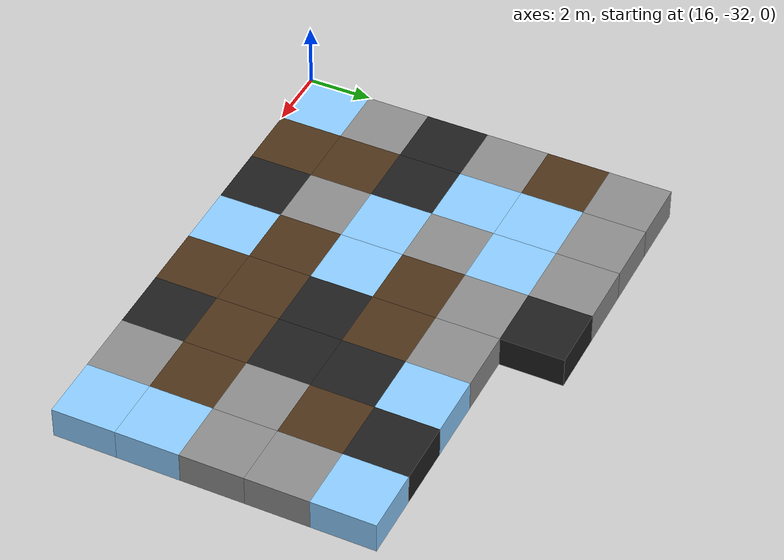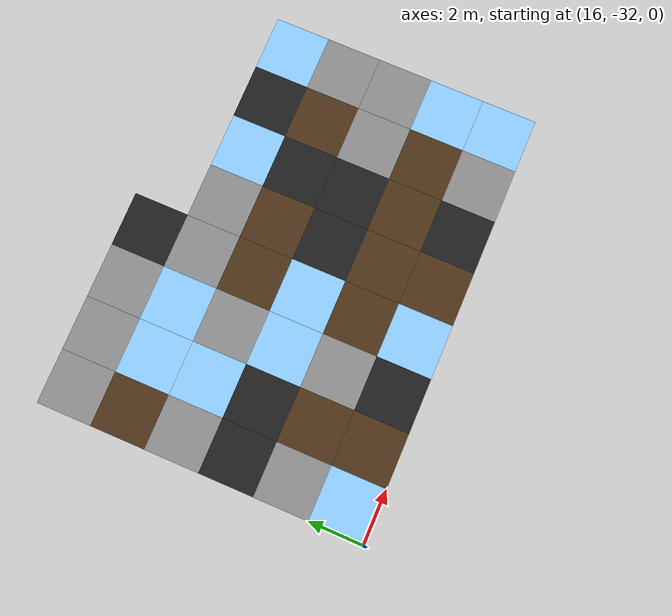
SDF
<sdf version="1.5">
 <world name="squares_example">
  <model name="tile_24_0">
   <static>true</static>
   <pose>17.000 -31.000 -0.500 0 0 0</pose>
   <link name="link">
    <collision name="col">
     <geometry><box><size>2.0 2.0 1.0</size></box></geometry>
     <surface>
      <friction>
       <ode><mu>0.03</mu><mu2>0.02</mu2><fdir1>1 0 0</fdir1><slip1>0.03</slip1><slip2>0.03</slip2></ode>
       <torsional>
        <coefficient>0.005</coefficient>
        <use_patch_radius>false</use_patch_radius>
        <surface_radius>0.12</surface_radius>
        <ode><slip>0.01</slip></ode>
       </torsional>
      </friction>
      <bounce><restitution_coefficient>0.0</restitution_coefficient><threshold>0.1</threshold></bounce>
      <contact>
       <ode><kp>10000000.0</kp><kd>1000.0</kd><max_vel>0.01</max_vel><min_depth>0.0</min_depth></ode>
      </contact>
     </surface>
    </collision>
    <visual name="visual">
     <geometry><box><size>2.0 2.0 1.0</size></box></geometry>
     <material>
      <diffuse>0.55 0.80 1.00 1</diffuse>
      <ambient>0 0 0 0</ambient>
      <specular>0 0 0 1</specular>
      <emissive>0 0 0 1</emissive>
     </material>
    </visual>
   </link>
  </model>
  <model name="tile_25_0">
   <static>true</static>
   <pose>19.000 -31.000 -0.500 0 0 0</pose>
   <link name="link">
    <collision name="col">
     <geometry><box><size>2.0 2.0 1.0</size></box></geometry>
     <surface>
      <friction>
       <ode><mu>0.6</mu><mu2>0.4</mu2><fdir1>1 0 0</fdir1><slip1>0.08</slip1><slip2>0.08</slip2></ode>
       <torsional>
        <coefficient>0.03</coefficient>
        <use_patch_radius>false</use_patch_radius>
        <surface_radius>0.12</surface_radius>
        <ode><slip>0.0</slip></ode>
       </torsional>
      </friction>
      <bounce><restitution_coefficient>0.0</restitution_coefficient><threshold>0.1</threshold></bounce>
      <contact>
       <ode><kp>1000000.0</kp><kd>10000.0</kd><max_vel>0.01</max_vel><min_depth>0.0</min_depth></ode>
      </contact>
     </surface>
    </collision>
    <visual name="visual">
     <geometry><box><size>2.0 2.0 1.0</size></box></geometry>
     <material>
      <diffuse>0.30 0.20 0.10 1</diffuse>
      <ambient>0 0 0 0</ambient>
      <specular>0 0 0 1</specular>
      <emissive>0 0 0 1</emissive>
     </material>
    </visual>
   </link>
  </model>
  <model name="tile_26_0">
   <static>true</static>
   <pose>21.000 -31.000 -0.500 0 0 0</pose>
   <link name="link">
    <collision name="col">
     <geometry><box><size>2.0 2.0 1.0</size></box></geometry>
     <surface>
      <friction>
       <ode><mu>0.4</mu><mu2>0.15</mu2><fdir1>1 0 0</fdir1><slip1>0.0</slip1><slip2>0.0</slip2></ode>
       <torsional>
        <coefficient>0.03</coefficient>
        <use_patch_radius>false</use_patch_radius>
        <surface_radius>0.12</surface_radius>
        <ode><slip>0.0</slip></ode>
       </torsional>
      </friction>
      <bounce><restitution_coefficient>0.0</restitution_coefficient><threshold>0.1</threshold></bounce>
      <contact>
       <ode><kp>1000000000.0</kp><kd>1000000.0</kd><max_vel>0.01</max_vel><min_depth>0.0</min_depth></ode>
      </contact>
     </surface>
    </collision>
    <visual name="visual">
     <geometry><box><size>2.0 2.0 1.0</size></box></geometry>
     <material>
      <diffuse>0.12 0.12 0.12 1</diffuse>
      <ambient>0 0 0 0</ambient>
      <specular>0 0 0 1</specular>
      <emissive>0 0 0 1</emissive>
     </material>
    </visual>
   </link>
  </model>
  <model name="tile_27_0">
   <static>true</static>
   <pose>23.000 -31.000 -0.500 0 0 0</pose>
   <link name="link">
    <collision name="col">
     <geometry><box><size>2.0 2.0 1.0</size></box></geometry>
     <surface>
      <friction>
       <ode><mu>0.03</mu><mu2>0.02</mu2><fdir1>1 0 0</fdir1><slip1>0.03</slip1><slip2>0.03</slip2></ode>
       <torsional>
        <coefficient>0.005</coefficient>
        <use_patch_radius>false</use_patch_radius>
        <surface_radius>0.12</surface_radius>
        <ode><slip>0.01</slip></ode>
       </torsional>
      </friction>
      <bounce><restitution_coefficient>0.0</restitution_coefficient><threshold>0.1</threshold></bounce>
      <contact>
       <ode><kp>10000000.0</kp><kd>1000.0</kd><max_vel>0.01</max_vel><min_depth>0.0</min_depth></ode>
      </contact>
     </surface>
    </collision>
    <visual name="visual">
     <geometry><box><size>2.0 2.0 1.0</size></box></geometry>
     <material>
      <diffuse>0.55 0.80 1.00 1</diffuse>
      <ambient>0 0 0 0</ambient>
      <specular>0 0 0 1</specular>
      <emissive>0 0 0 1</emissive>
     </material>
    </visual>
   </link>
  </model>
  <model name="tile_28_0">
   <static>true</static>
   <pose>25.000 -31.000 -0.500 0 0 0</pose>
   <link name="link">
    <collision name="col">
     <geometry><box><size>2.0 2.0 1.0</size></box></geometry>
     <surface>
      <friction>
       <ode><mu>0.6</mu><mu2>0.4</mu2><fdir1>1 0 0</fdir1><slip1>0.08</slip1><slip2>0.08</slip2></ode>
       <torsional>
        <coefficient>0.03</coefficient>
        <use_patch_radius>false</use_patch_radius>
        <surface_radius>0.12</surface_radius>
        <ode><slip>0.0</slip></ode>
       </torsional>
      </friction>
      <bounce><restitution_coefficient>0.0</restitution_coefficient><threshold>0.1</threshold></bounce>
      <contact>
       <ode><kp>1000000.0</kp><kd>10000.0</kd><max_vel>0.01</max_vel><min_depth>0.0</min_depth></ode>
      </contact>
     </surface>
    </collision>
    <visual name="visual">
     <geometry><box><size>2.0 2.0 1.0</size></box></geometry>
     <material>
      <diffuse>0.30 0.20 0.10 1</diffuse>
      <ambient>0 0 0 0</ambient>
      <specular>0 0 0 1</specular>
      <emissive>0 0 0 1</emissive>
     </material>
    </visual>
   </link>
  </model>
  <model name="tile_29_0">
   <static>true</static>
   <pose>27.000 -31.000 -0.500 0 0 0</pose>
   <link name="link">
    <collision name="col">
     <geometry><box><size>2.0 2.0 1.0</size></box></geometry>
     <surface>
      <friction>
       <ode><mu>0.4</mu><mu2>0.15</mu2><fdir1>1 0 0</fdir1><slip1>0.0</slip1><slip2>0.0</slip2></ode>
       <torsional>
        <coefficient>0.03</coefficient>
        <use_patch_radius>false</use_patch_radius>
        <surface_radius>0.12</surface_radius>
        <ode><slip>0.0</slip></ode>
       </torsional>
      </friction>
      <bounce><restitution_coefficient>0.0</restitution_coefficient><threshold>0.1</threshold></bounce>
      <contact>
       <ode><kp>1000000000.0</kp><kd>1000000.0</kd><max_vel>0.01</max_vel><min_depth>0.0</min_depth></ode>
      </contact>
     </surface>
    </collision>
    <visual name="visual">
     <geometry><box><size>2.0 2.0 1.0</size></box></geometry>
     <material>
      <diffuse>0.12 0.12 0.12 1</diffuse>
      <ambient>0 0 0 0</ambient>
      <specular>0 0 0 1</specular>
      <emissive>0 0 0 1</emissive>
     </material>
    </visual>
   </link>
  </model>
  <model name="tile_30_0">
   <static>true</static>
   <pose>29.000 -31.000 -0.500 0 0 0</pose>
   <link name="link">
    <collision name="col">
     <geometry><box><size>2.0 2.0 1.0</size></box></geometry>
     <surface>
      <friction>
       <ode><mu>0.8</mu><mu2>0.3</mu2><fdir1>1 0 0</fdir1><slip1>0.0</slip1><slip2>0.0</slip2></ode>
       <torsional>
        <coefficient>0.03</coefficient>
        <use_patch_radius>false</use_patch_radius>
        <surface_radius>0.12</surface_radius>
        <ode><slip>0.0</slip></ode>
       </torsional>
      </friction>
      <bounce><restitution_coefficient>0.0</restitution_coefficient><threshold>0.1</threshold></bounce>
      <contact>
       <ode><kp>10000000000.0</kp><kd>10000000.0</kd><max_vel>0.01</max_vel><min_depth>0.0</min_depth></ode>
      </contact>
     </surface>
    </collision>
    <visual name="visual">
     <geometry><box><size>2.0 2.0 1.0</size></box></geometry>
     <material>
      <diffuse>0.55 0.55 0.55 1</diffuse>
      <ambient>0 0 0 0</ambient>
      <specular>0 0 0 1</specular>
      <emissive>0 0 0 1</emissive>
     </material>
    </visual>
   </link>
  </model>
  <model name="tile_31_0">
   <static>true</static>
   <pose>31.000 -31.000 -0.500 0 0 0</pose>
   <link name="link">
    <collision name="col">
     <geometry><box><size>2.0 2.0 1.0</size></box></geometry>
     <surface>
      <friction>
       <ode><mu>0.03</mu><mu2>0.02</mu2><fdir1>1 0 0</fdir1><slip1>0.03</slip1><slip2>0.03</slip2></ode>
       <torsional>
        <coefficient>0.005</coefficient>
        <use_patch_radius>false</use_patch_radius>
        <surface_radius>0.12</surface_radius>
        <ode><slip>0.01</slip></ode>
       </torsional>
      </friction>
      <bounce><restitution_coefficient>0.0</restitution_coefficient><threshold>0.1</threshold></bounce>
      <contact>
       <ode><kp>10000000.0</kp><kd>1000.0</kd><max_vel>0.01</max_vel><min_depth>0.0</min_depth></ode>
      </contact>
     </surface>
    </collision>
    <visual name="visual">
     <geometry><box><size>2.0 2.0 1.0</size></box></geometry>
     <material>
      <diffuse>0.55 0.80 1.00 1</diffuse>
      <ambient>0 0 0 0</ambient>
      <specular>0 0 0 1</specular>
      <emissive>0 0 0 1</emissive>
     </material>
    </visual>
   </link>
  </model>
  <model name="tile_24_1">
   <static>true</static>
   <pose>17.000 -29.000 -0.500 0 0 0</pose>
   <link name="link">
    <collision name="col">
     <geometry><box><size>2.0 2.0 1.0</size></box></geometry>
     <surface>
      <friction>
       <ode><mu>0.8</mu><mu2>0.3</mu2><fdir1>1 0 0</fdir1><slip1>0.0</slip1><slip2>0.0</slip2></ode>
       <torsional>
        <coefficient>0.03</coefficient>
        <use_patch_radius>false</use_patch_radius>
        <surface_radius>0.12</surface_radius>
        <ode><slip>0.0</slip></ode>
       </torsional>
      </friction>
      <bounce><restitution_coefficient>0.0</restitution_coefficient><threshold>0.1</threshold></bounce>
      <contact>
       <ode><kp>10000000000.0</kp><kd>10000000.0</kd><max_vel>0.01</max_vel><min_depth>0.0</min_depth></ode>
      </contact>
     </surface>
    </collision>
    <visual name="visual">
     <geometry><box><size>2.0 2.0 1.0</size></box></geometry>
     <material>
      <diffuse>0.55 0.55 0.55 1</diffuse>
      <ambient>0 0 0 0</ambient>
      <specular>0 0 0 1</specular>
      <emissive>0 0 0 1</emissive>
     </material>
    </visual>
   </link>
  </model>
  <model name="tile_25_1">
   <static>true</static>
   <pose>19.000 -29.000 -0.500 0 0 0</pose>
   <link name="link">
    <collision name="col">
     <geometry><box><size>2.0 2.0 1.0</size></box></geometry>
     <surface>
      <friction>
       <ode><mu>0.6</mu><mu2>0.4</mu2><fdir1>1 0 0</fdir1><slip1>0.08</slip1><slip2>0.08</slip2></ode>
       <torsional>
        <coefficient>0.03</coefficient>
        <use_patch_radius>false</use_patch_radius>
        <surface_radius>0.12</surface_radius>
        <ode><slip>0.0</slip></ode>
       </torsional>
      </friction>
      <bounce><restitution_coefficient>0.0</restitution_coefficient><threshold>0.1</threshold></bounce>
      <contact>
       <ode><kp>1000000.0</kp><kd>10000.0</kd><max_vel>0.01</max_vel><min_depth>0.0</min_depth></ode>
      </contact>
     </surface>
    </collision>
    <visual name="visual">
     <geometry><box><size>2.0 2.0 1.0</size></box></geometry>
     <material>
      <diffuse>0.30 0.20 0.10 1</diffuse>
      <ambient>0 0 0 0</ambient>
      <specular>0 0 0 1</specular>
      <emissive>0 0 0 1</emissive>
     </material>
    </visual>
   </link>
  </model>
  <model name="tile_26_1">
   <static>true</static>
   <pose>21.000 -29.000 -0.500 0 0 0</pose>
   <link name="link">
    <collision name="col">
     <geometry><box><size>2.0 2.0 1.0</size></box></geometry>
     <surface>
      <friction>
       <ode><mu>0.8</mu><mu2>0.3</mu2><fdir1>1 0 0</fdir1><slip1>0.0</slip1><slip2>0.0</slip2></ode>
       <torsional>
        <coefficient>0.03</coefficient>
        <use_patch_radius>false</use_patch_radius>
        <surface_radius>0.12</surface_radius>
        <ode><slip>0.0</slip></ode>
       </torsional>
      </friction>
      <bounce><restitution_coefficient>0.0</restitution_coefficient><threshold>0.1</threshold></bounce>
      <contact>
       <ode><kp>10000000000.0</kp><kd>10000000.0</kd><max_vel>0.01</max_vel><min_depth>0.0</min_depth></ode>
      </contact>
     </surface>
    </collision>
    <visual name="visual">
     <geometry><box><size>2.0 2.0 1.0</size></box></geometry>
     <material>
      <diffuse>0.55 0.55 0.55 1</diffuse>
      <ambient>0 0 0 0</ambient>
      <specular>0 0 0 1</specular>
      <emissive>0 0 0 1</emissive>
     </material>
    </visual>
   </link>
  </model>
  <model name="tile_27_1">
   <static>true</static>
   <pose>23.000 -29.000 -0.500 0 0 0</pose>
   <link name="link">
    <collision name="col">
     <geometry><box><size>2.0 2.0 1.0</size></box></geometry>
     <surface>
      <friction>
       <ode><mu>0.6</mu><mu2>0.4</mu2><fdir1>1 0 0</fdir1><slip1>0.08</slip1><slip2>0.08</slip2></ode>
       <torsional>
        <coefficient>0.03</coefficient>
        <use_patch_radius>false</use_patch_radius>
        <surface_radius>0.12</surface_radius>
        <ode><slip>0.0</slip></ode>
       </torsional>
      </friction>
      <bounce><restitution_coefficient>0.0</restitution_coefficient><threshold>0.1</threshold></bounce>
      <contact>
       <ode><kp>1000000.0</kp><kd>10000.0</kd><max_vel>0.01</max_vel><min_depth>0.0</min_depth></ode>
      </contact>
     </surface>
    </collision>
    <visual name="visual">
     <geometry><box><size>2.0 2.0 1.0</size></box></geometry>
     <material>
      <diffuse>0.30 0.20 0.10 1</diffuse>
      <ambient>0 0 0 0</ambient>
      <specular>0 0 0 1</specular>
      <emissive>0 0 0 1</emissive>
     </material>
    </visual>
   </link>
  </model>
  <model name="tile_28_1">
   <static>true</static>
   <pose>25.000 -29.000 -0.500 0 0 0</pose>
   <link name="link">
    <collision name="col">
     <geometry><box><size>2.0 2.0 1.0</size></box></geometry>
     <surface>
      <friction>
       <ode><mu>0.6</mu><mu2>0.4</mu2><fdir1>1 0 0</fdir1><slip1>0.08</slip1><slip2>0.08</slip2></ode>
       <torsional>
        <coefficient>0.03</coefficient>
        <use_patch_radius>false</use_patch_radius>
        <surface_radius>0.12</surface_radius>
        <ode><slip>0.0</slip></ode>
       </torsional>
      </friction>
      <bounce><restitution_coefficient>0.0</restitution_coefficient><threshold>0.1</threshold></bounce>
      <contact>
       <ode><kp>1000000.0</kp><kd>10000.0</kd><max_vel>0.01</max_vel><min_depth>0.0</min_depth></ode>
      </contact>
     </surface>
    </collision>
    <visual name="visual">
     <geometry><box><size>2.0 2.0 1.0</size></box></geometry>
     <material>
      <diffuse>0.30 0.20 0.10 1</diffuse>
      <ambient>0 0 0 0</ambient>
      <specular>0 0 0 1</specular>
      <emissive>0 0 0 1</emissive>
     </material>
    </visual>
   </link>
  </model>
  <model name="tile_29_1">
   <static>true</static>
   <pose>27.000 -29.000 -0.500 0 0 0</pose>
   <link name="link">
    <collision name="col">
     <geometry><box><size>2.0 2.0 1.0</size></box></geometry>
     <surface>
      <friction>
       <ode><mu>0.6</mu><mu2>0.4</mu2><fdir1>1 0 0</fdir1><slip1>0.08</slip1><slip2>0.08</slip2></ode>
       <torsional>
        <coefficient>0.03</coefficient>
        <use_patch_radius>false</use_patch_radius>
        <surface_radius>0.12</surface_radius>
        <ode><slip>0.0</slip></ode>
       </torsional>
      </friction>
      <bounce><restitution_coefficient>0.0</restitution_coefficient><threshold>0.1</threshold></bounce>
      <contact>
       <ode><kp>1000000.0</kp><kd>10000.0</kd><max_vel>0.01</max_vel><min_depth>0.0</min_depth></ode>
      </contact>
     </surface>
    </collision>
    <visual name="visual">
     <geometry><box><size>2.0 2.0 1.0</size></box></geometry>
     <material>
      <diffuse>0.30 0.20 0.10 1</diffuse>
      <ambient>0 0 0 0</ambient>
      <specular>0 0 0 1</specular>
      <emissive>0 0 0 1</emissive>
     </material>
    </visual>
   </link>
  </model>
  <model name="tile_30_1">
   <static>true</static>
   <pose>29.000 -29.000 -0.500 0 0 0</pose>
   <link name="link">
    <collision name="col">
     <geometry><box><size>2.0 2.0 1.0</size></box></geometry>
     <surface>
      <friction>
       <ode><mu>0.6</mu><mu2>0.4</mu2><fdir1>1 0 0</fdir1><slip1>0.08</slip1><slip2>0.08</slip2></ode>
       <torsional>
        <coefficient>0.03</coefficient>
        <use_patch_radius>false</use_patch_radius>
        <surface_radius>0.12</surface_radius>
        <ode><slip>0.0</slip></ode>
       </torsional>
      </friction>
      <bounce><restitution_coefficient>0.0</restitution_coefficient><threshold>0.1</threshold></bounce>
      <contact>
       <ode><kp>1000000.0</kp><kd>10000.0</kd><max_vel>0.01</max_vel><min_depth>0.0</min_depth></ode>
      </contact>
     </surface>
    </collision>
    <visual name="visual">
     <geometry><box><size>2.0 2.0 1.0</size></box></geometry>
     <material>
      <diffuse>0.30 0.20 0.10 1</diffuse>
      <ambient>0 0 0 0</ambient>
      <specular>0 0 0 1</specular>
      <emissive>0 0 0 1</emissive>
     </material>
    </visual>
   </link>
  </model>
  <model name="tile_31_1">
   <static>true</static>
   <pose>31.000 -29.000 -0.500 0 0 0</pose>
   <link name="link">
    <collision name="col">
     <geometry><box><size>2.0 2.0 1.0</size></box></geometry>
     <surface>
      <friction>
       <ode><mu>0.03</mu><mu2>0.02</mu2><fdir1>1 0 0</fdir1><slip1>0.03</slip1><slip2>0.03</slip2></ode>
       <torsional>
        <coefficient>0.005</coefficient>
        <use_patch_radius>false</use_patch_radius>
        <surface_radius>0.12</surface_radius>
        <ode><slip>0.01</slip></ode>
       </torsional>
      </friction>
      <bounce><restitution_coefficient>0.0</restitution_coefficient><threshold>0.1</threshold></bounce>
      <contact>
       <ode><kp>10000000.0</kp><kd>1000.0</kd><max_vel>0.01</max_vel><min_depth>0.0</min_depth></ode>
      </contact>
     </surface>
    </collision>
    <visual name="visual">
     <geometry><box><size>2.0 2.0 1.0</size></box></geometry>
     <material>
      <diffuse>0.55 0.80 1.00 1</diffuse>
      <ambient>0 0 0 0</ambient>
      <specular>0 0 0 1</specular>
      <emissive>0 0 0 1</emissive>
     </material>
    </visual>
   </link>
  </model>
  <model name="tile_24_2">
   <static>true</static>
   <pose>17.000 -27.000 -0.500 0 0 0</pose>
   <link name="link">
    <collision name="col">
     <geometry><box><size>2.0 2.0 1.0</size></box></geometry>
     <surface>
      <friction>
       <ode><mu>0.4</mu><mu2>0.15</mu2><fdir1>1 0 0</fdir1><slip1>0.0</slip1><slip2>0.0</slip2></ode>
       <torsional>
        <coefficient>0.03</coefficient>
        <use_patch_radius>false</use_patch_radius>
        <surface_radius>0.12</surface_radius>
        <ode><slip>0.0</slip></ode>
       </torsional>
      </friction>
      <bounce><restitution_coefficient>0.0</restitution_coefficient><threshold>0.1</threshold></bounce>
      <contact>
       <ode><kp>1000000000.0</kp><kd>1000000.0</kd><max_vel>0.01</max_vel><min_depth>0.0</min_depth></ode>
      </contact>
     </surface>
    </collision>
    <visual name="visual">
     <geometry><box><size>2.0 2.0 1.0</size></box></geometry>
     <material>
      <diffuse>0.12 0.12 0.12 1</diffuse>
      <ambient>0 0 0 0</ambient>
      <specular>0 0 0 1</specular>
      <emissive>0 0 0 1</emissive>
     </material>
    </visual>
   </link>
  </model>
  <model name="tile_25_2">
   <static>true</static>
   <pose>19.000 -27.000 -0.500 0 0 0</pose>
   <link name="link">
    <collision name="col">
     <geometry><box><size>2.0 2.0 1.0</size></box></geometry>
     <surface>
      <friction>
       <ode><mu>0.4</mu><mu2>0.15</mu2><fdir1>1 0 0</fdir1><slip1>0.0</slip1><slip2>0.0</slip2></ode>
       <torsional>
        <coefficient>0.03</coefficient>
        <use_patch_radius>false</use_patch_radius>
        <surface_radius>0.12</surface_radius>
        <ode><slip>0.0</slip></ode>
       </torsional>
      </friction>
      <bounce><restitution_coefficient>0.0</restitution_coefficient><threshold>0.1</threshold></bounce>
      <contact>
       <ode><kp>1000000000.0</kp><kd>1000000.0</kd><max_vel>0.01</max_vel><min_depth>0.0</min_depth></ode>
      </contact>
     </surface>
    </collision>
    <visual name="visual">
     <geometry><box><size>2.0 2.0 1.0</size></box></geometry>
     <material>
      <diffuse>0.12 0.12 0.12 1</diffuse>
      <ambient>0 0 0 0</ambient>
      <specular>0 0 0 1</specular>
      <emissive>0 0 0 1</emissive>
     </material>
    </visual>
   </link>
  </model>
  <model name="tile_26_2">
   <static>true</static>
   <pose>21.000 -27.000 -0.500 0 0 0</pose>
   <link name="link">
    <collision name="col">
     <geometry><box><size>2.0 2.0 1.0</size></box></geometry>
     <surface>
      <friction>
       <ode><mu>0.03</mu><mu2>0.02</mu2><fdir1>1 0 0</fdir1><slip1>0.03</slip1><slip2>0.03</slip2></ode>
       <torsional>
        <coefficient>0.005</coefficient>
        <use_patch_radius>false</use_patch_radius>
        <surface_radius>0.12</surface_radius>
        <ode><slip>0.01</slip></ode>
       </torsional>
      </friction>
      <bounce><restitution_coefficient>0.0</restitution_coefficient><threshold>0.1</threshold></bounce>
      <contact>
       <ode><kp>10000000.0</kp><kd>1000.0</kd><max_vel>0.01</max_vel><min_depth>0.0</min_depth></ode>
      </contact>
     </surface>
    </collision>
    <visual name="visual">
     <geometry><box><size>2.0 2.0 1.0</size></box></geometry>
     <material>
      <diffuse>0.55 0.80 1.00 1</diffuse>
      <ambient>0 0 0 0</ambient>
      <specular>0 0 0 1</specular>
      <emissive>0 0 0 1</emissive>
     </material>
    </visual>
   </link>
  </model>
  <model name="tile_27_2">
   <static>true</static>
   <pose>23.000 -27.000 -0.500 0 0 0</pose>
   <link name="link">
    <collision name="col">
     <geometry><box><size>2.0 2.0 1.0</size></box></geometry>
     <surface>
      <friction>
       <ode><mu>0.03</mu><mu2>0.02</mu2><fdir1>1 0 0</fdir1><slip1>0.03</slip1><slip2>0.03</slip2></ode>
       <torsional>
        <coefficient>0.005</coefficient>
        <use_patch_radius>false</use_patch_radius>
        <surface_radius>0.12</surface_radius>
        <ode><slip>0.01</slip></ode>
       </torsional>
      </friction>
      <bounce><restitution_coefficient>0.0</restitution_coefficient><threshold>0.1</threshold></bounce>
      <contact>
       <ode><kp>10000000.0</kp><kd>1000.0</kd><max_vel>0.01</max_vel><min_depth>0.0</min_depth></ode>
      </contact>
     </surface>
    </collision>
    <visual name="visual">
     <geometry><box><size>2.0 2.0 1.0</size></box></geometry>
     <material>
      <diffuse>0.55 0.80 1.00 1</diffuse>
      <ambient>0 0 0 0</ambient>
      <specular>0 0 0 1</specular>
      <emissive>0 0 0 1</emissive>
     </material>
    </visual>
   </link>
  </model>
  <model name="tile_28_2">
   <static>true</static>
   <pose>25.000 -27.000 -0.500 0 0 0</pose>
   <link name="link">
    <collision name="col">
     <geometry><box><size>2.0 2.0 1.0</size></box></geometry>
     <surface>
      <friction>
       <ode><mu>0.4</mu><mu2>0.15</mu2><fdir1>1 0 0</fdir1><slip1>0.0</slip1><slip2>0.0</slip2></ode>
       <torsional>
        <coefficient>0.03</coefficient>
        <use_patch_radius>false</use_patch_radius>
        <surface_radius>0.12</surface_radius>
        <ode><slip>0.0</slip></ode>
       </torsional>
      </friction>
      <bounce><restitution_coefficient>0.0</restitution_coefficient><threshold>0.1</threshold></bounce>
      <contact>
       <ode><kp>1000000000.0</kp><kd>1000000.0</kd><max_vel>0.01</max_vel><min_depth>0.0</min_depth></ode>
      </contact>
     </surface>
    </collision>
    <visual name="visual">
     <geometry><box><size>2.0 2.0 1.0</size></box></geometry>
     <material>
      <diffuse>0.12 0.12 0.12 1</diffuse>
      <ambient>0 0 0 0</ambient>
      <specular>0 0 0 1</specular>
      <emissive>0 0 0 1</emissive>
     </material>
    </visual>
   </link>
  </model>
  <model name="tile_29_2">
   <static>true</static>
   <pose>27.000 -27.000 -0.500 0 0 0</pose>
   <link name="link">
    <collision name="col">
     <geometry><box><size>2.0 2.0 1.0</size></box></geometry>
     <surface>
      <friction>
       <ode><mu>0.4</mu><mu2>0.15</mu2><fdir1>1 0 0</fdir1><slip1>0.0</slip1><slip2>0.0</slip2></ode>
       <torsional>
        <coefficient>0.03</coefficient>
        <use_patch_radius>false</use_patch_radius>
        <surface_radius>0.12</surface_radius>
        <ode><slip>0.0</slip></ode>
       </torsional>
      </friction>
      <bounce><restitution_coefficient>0.0</restitution_coefficient><threshold>0.1</threshold></bounce>
      <contact>
       <ode><kp>1000000000.0</kp><kd>1000000.0</kd><max_vel>0.01</max_vel><min_depth>0.0</min_depth></ode>
      </contact>
     </surface>
    </collision>
    <visual name="visual">
     <geometry><box><size>2.0 2.0 1.0</size></box></geometry>
     <material>
      <diffuse>0.12 0.12 0.12 1</diffuse>
      <ambient>0 0 0 0</ambient>
      <specular>0 0 0 1</specular>
      <emissive>0 0 0 1</emissive>
     </material>
    </visual>
   </link>
  </model>
  <model name="tile_30_2">
   <static>true</static>
   <pose>29.000 -27.000 -0.500 0 0 0</pose>
   <link name="link">
    <collision name="col">
     <geometry><box><size>2.0 2.0 1.0</size></box></geometry>
     <surface>
      <friction>
       <ode><mu>0.8</mu><mu2>0.3</mu2><fdir1>1 0 0</fdir1><slip1>0.0</slip1><slip2>0.0</slip2></ode>
       <torsional>
        <coefficient>0.03</coefficient>
        <use_patch_radius>false</use_patch_radius>
        <surface_radius>0.12</surface_radius>
        <ode><slip>0.0</slip></ode>
       </torsional>
      </friction>
      <bounce><restitution_coefficient>0.0</restitution_coefficient><threshold>0.1</threshold></bounce>
      <contact>
       <ode><kp>10000000000.0</kp><kd>10000000.0</kd><max_vel>0.01</max_vel><min_depth>0.0</min_depth></ode>
      </contact>
     </surface>
    </collision>
    <visual name="visual">
     <geometry><box><size>2.0 2.0 1.0</size></box></geometry>
     <material>
      <diffuse>0.55 0.55 0.55 1</diffuse>
      <ambient>0 0 0 0</ambient>
      <specular>0 0 0 1</specular>
      <emissive>0 0 0 1</emissive>
     </material>
    </visual>
   </link>
  </model>
  <model name="tile_31_2">
   <static>true</static>
   <pose>31.000 -27.000 -0.500 0 0 0</pose>
   <link name="link">
    <collision name="col">
     <geometry><box><size>2.0 2.0 1.0</size></box></geometry>
     <surface>
      <friction>
       <ode><mu>0.8</mu><mu2>0.3</mu2><fdir1>1 0 0</fdir1><slip1>0.0</slip1><slip2>0.0</slip2></ode>
       <torsional>
        <coefficient>0.03</coefficient>
        <use_patch_radius>false</use_patch_radius>
        <surface_radius>0.12</surface_radius>
        <ode><slip>0.0</slip></ode>
       </torsional>
      </friction>
      <bounce><restitution_coefficient>0.0</restitution_coefficient><threshold>0.1</threshold></bounce>
      <contact>
       <ode><kp>10000000000.0</kp><kd>10000000.0</kd><max_vel>0.01</max_vel><min_depth>0.0</min_depth></ode>
      </contact>
     </surface>
    </collision>
    <visual name="visual">
     <geometry><box><size>2.0 2.0 1.0</size></box></geometry>
     <material>
      <diffuse>0.55 0.55 0.55 1</diffuse>
      <ambient>0 0 0 0</ambient>
      <specular>0 0 0 1</specular>
      <emissive>0 0 0 1</emissive>
     </material>
    </visual>
   </link>
  </model>
  <model name="tile_24_3">
   <static>true</static>
   <pose>17.000 -25.000 -0.500 0 0 0</pose>
   <link name="link">
    <collision name="col">
     <geometry><box><size>2.0 2.0 1.0</size></box></geometry>
     <surface>
      <friction>
       <ode><mu>0.8</mu><mu2>0.3</mu2><fdir1>1 0 0</fdir1><slip1>0.0</slip1><slip2>0.0</slip2></ode>
       <torsional>
        <coefficient>0.03</coefficient>
        <use_patch_radius>false</use_patch_radius>
        <surface_radius>0.12</surface_radius>
        <ode><slip>0.0</slip></ode>
       </torsional>
      </friction>
      <bounce><restitution_coefficient>0.0</restitution_coefficient><threshold>0.1</threshold></bounce>
      <contact>
       <ode><kp>10000000000.0</kp><kd>10000000.0</kd><max_vel>0.01</max_vel><min_depth>0.0</min_depth></ode>
      </contact>
     </surface>
    </collision>
    <visual name="visual">
     <geometry><box><size>2.0 2.0 1.0</size></box></geometry>
     <material>
      <diffuse>0.55 0.55 0.55 1</diffuse>
      <ambient>0 0 0 0</ambient>
      <specular>0 0 0 1</specular>
      <emissive>0 0 0 1</emissive>
     </material>
    </visual>
   </link>
  </model>
  <model name="tile_25_3">
   <static>true</static>
   <pose>19.000 -25.000 -0.500 0 0 0</pose>
   <link name="link">
    <collision name="col">
     <geometry><box><size>2.0 2.0 1.0</size></box></geometry>
     <surface>
      <friction>
       <ode><mu>0.03</mu><mu2>0.02</mu2><fdir1>1 0 0</fdir1><slip1>0.03</slip1><slip2>0.03</slip2></ode>
       <torsional>
        <coefficient>0.005</coefficient>
        <use_patch_radius>false</use_patch_radius>
        <surface_radius>0.12</surface_radius>
        <ode><slip>0.01</slip></ode>
       </torsional>
      </friction>
      <bounce><restitution_coefficient>0.0</restitution_coefficient><threshold>0.1</threshold></bounce>
      <contact>
       <ode><kp>10000000.0</kp><kd>1000.0</kd><max_vel>0.01</max_vel><min_depth>0.0</min_depth></ode>
      </contact>
     </surface>
    </collision>
    <visual name="visual">
     <geometry><box><size>2.0 2.0 1.0</size></box></geometry>
     <material>
      <diffuse>0.55 0.80 1.00 1</diffuse>
      <ambient>0 0 0 0</ambient>
      <specular>0 0 0 1</specular>
      <emissive>0 0 0 1</emissive>
     </material>
    </visual>
   </link>
  </model>
  <model name="tile_26_3">
   <static>true</static>
   <pose>21.000 -25.000 -0.500 0 0 0</pose>
   <link name="link">
    <collision name="col">
     <geometry><box><size>2.0 2.0 1.0</size></box></geometry>
     <surface>
      <friction>
       <ode><mu>0.8</mu><mu2>0.3</mu2><fdir1>1 0 0</fdir1><slip1>0.0</slip1><slip2>0.0</slip2></ode>
       <torsional>
        <coefficient>0.03</coefficient>
        <use_patch_radius>false</use_patch_radius>
        <surface_radius>0.12</surface_radius>
        <ode><slip>0.0</slip></ode>
       </torsional>
      </friction>
      <bounce><restitution_coefficient>0.0</restitution_coefficient><threshold>0.1</threshold></bounce>
      <contact>
       <ode><kp>10000000000.0</kp><kd>10000000.0</kd><max_vel>0.01</max_vel><min_depth>0.0</min_depth></ode>
      </contact>
     </surface>
    </collision>
    <visual name="visual">
     <geometry><box><size>2.0 2.0 1.0</size></box></geometry>
     <material>
      <diffuse>0.55 0.55 0.55 1</diffuse>
      <ambient>0 0 0 0</ambient>
      <specular>0 0 0 1</specular>
      <emissive>0 0 0 1</emissive>
     </material>
    </visual>
   </link>
  </model>
  <model name="tile_27_3">
   <static>true</static>
   <pose>23.000 -25.000 -0.500 0 0 0</pose>
   <link name="link">
    <collision name="col">
     <geometry><box><size>2.0 2.0 1.0</size></box></geometry>
     <surface>
      <friction>
       <ode><mu>0.6</mu><mu2>0.4</mu2><fdir1>1 0 0</fdir1><slip1>0.08</slip1><slip2>0.08</slip2></ode>
       <torsional>
        <coefficient>0.03</coefficient>
        <use_patch_radius>false</use_patch_radius>
        <surface_radius>0.12</surface_radius>
        <ode><slip>0.0</slip></ode>
       </torsional>
      </friction>
      <bounce><restitution_coefficient>0.0</restitution_coefficient><threshold>0.1</threshold></bounce>
      <contact>
       <ode><kp>1000000.0</kp><kd>10000.0</kd><max_vel>0.01</max_vel><min_depth>0.0</min_depth></ode>
      </contact>
     </surface>
    </collision>
    <visual name="visual">
     <geometry><box><size>2.0 2.0 1.0</size></box></geometry>
     <material>
      <diffuse>0.30 0.20 0.10 1</diffuse>
      <ambient>0 0 0 0</ambient>
      <specular>0 0 0 1</specular>
      <emissive>0 0 0 1</emissive>
     </material>
    </visual>
   </link>
  </model>
  <model name="tile_28_3">
   <static>true</static>
   <pose>25.000 -25.000 -0.500 0 0 0</pose>
   <link name="link">
    <collision name="col">
     <geometry><box><size>2.0 2.0 1.0</size></box></geometry>
     <surface>
      <friction>
       <ode><mu>0.6</mu><mu2>0.4</mu2><fdir1>1 0 0</fdir1><slip1>0.08</slip1><slip2>0.08</slip2></ode>
       <torsional>
        <coefficient>0.03</coefficient>
        <use_patch_radius>false</use_patch_radius>
        <surface_radius>0.12</surface_radius>
        <ode><slip>0.0</slip></ode>
       </torsional>
      </friction>
      <bounce><restitution_coefficient>0.0</restitution_coefficient><threshold>0.1</threshold></bounce>
      <contact>
       <ode><kp>1000000.0</kp><kd>10000.0</kd><max_vel>0.01</max_vel><min_depth>0.0</min_depth></ode>
      </contact>
     </surface>
    </collision>
    <visual name="visual">
     <geometry><box><size>2.0 2.0 1.0</size></box></geometry>
     <material>
      <diffuse>0.30 0.20 0.10 1</diffuse>
      <ambient>0 0 0 0</ambient>
      <specular>0 0 0 1</specular>
      <emissive>0 0 0 1</emissive>
     </material>
    </visual>
   </link>
  </model>
  <model name="tile_29_3">
   <static>true</static>
   <pose>27.000 -25.000 -0.500 0 0 0</pose>
   <link name="link">
    <collision name="col">
     <geometry><box><size>2.0 2.0 1.0</size></box></geometry>
     <surface>
      <friction>
       <ode><mu>0.4</mu><mu2>0.15</mu2><fdir1>1 0 0</fdir1><slip1>0.0</slip1><slip2>0.0</slip2></ode>
       <torsional>
        <coefficient>0.03</coefficient>
        <use_patch_radius>false</use_patch_radius>
        <surface_radius>0.12</surface_radius>
        <ode><slip>0.0</slip></ode>
       </torsional>
      </friction>
      <bounce><restitution_coefficient>0.0</restitution_coefficient><threshold>0.1</threshold></bounce>
      <contact>
       <ode><kp>1000000000.0</kp><kd>1000000.0</kd><max_vel>0.01</max_vel><min_depth>0.0</min_depth></ode>
      </contact>
     </surface>
    </collision>
    <visual name="visual">
     <geometry><box><size>2.0 2.0 1.0</size></box></geometry>
     <material>
      <diffuse>0.12 0.12 0.12 1</diffuse>
      <ambient>0 0 0 0</ambient>
      <specular>0 0 0 1</specular>
      <emissive>0 0 0 1</emissive>
     </material>
    </visual>
   </link>
  </model>
  <model name="tile_30_3">
   <static>true</static>
   <pose>29.000 -25.000 -0.500 0 0 0</pose>
   <link name="link">
    <collision name="col">
     <geometry><box><size>2.0 2.0 1.0</size></box></geometry>
     <surface>
      <friction>
       <ode><mu>0.6</mu><mu2>0.4</mu2><fdir1>1 0 0</fdir1><slip1>0.08</slip1><slip2>0.08</slip2></ode>
       <torsional>
        <coefficient>0.03</coefficient>
        <use_patch_radius>false</use_patch_radius>
        <surface_radius>0.12</surface_radius>
        <ode><slip>0.0</slip></ode>
       </torsional>
      </friction>
      <bounce><restitution_coefficient>0.0</restitution_coefficient><threshold>0.1</threshold></bounce>
      <contact>
       <ode><kp>1000000.0</kp><kd>10000.0</kd><max_vel>0.01</max_vel><min_depth>0.0</min_depth></ode>
      </contact>
     </surface>
    </collision>
    <visual name="visual">
     <geometry><box><size>2.0 2.0 1.0</size></box></geometry>
     <material>
      <diffuse>0.30 0.20 0.10 1</diffuse>
      <ambient>0 0 0 0</ambient>
      <specular>0 0 0 1</specular>
      <emissive>0 0 0 1</emissive>
     </material>
    </visual>
   </link>
  </model>
  <model name="tile_31_3">
   <static>true</static>
   <pose>31.000 -25.000 -0.500 0 0 0</pose>
   <link name="link">
    <collision name="col">
     <geometry><box><size>2.0 2.0 1.0</size></box></geometry>
     <surface>
      <friction>
       <ode><mu>0.8</mu><mu2>0.3</mu2><fdir1>1 0 0</fdir1><slip1>0.0</slip1><slip2>0.0</slip2></ode>
       <torsional>
        <coefficient>0.03</coefficient>
        <use_patch_radius>false</use_patch_radius>
        <surface_radius>0.12</surface_radius>
        <ode><slip>0.0</slip></ode>
       </torsional>
      </friction>
      <bounce><restitution_coefficient>0.0</restitution_coefficient><threshold>0.1</threshold></bounce>
      <contact>
       <ode><kp>10000000000.0</kp><kd>10000000.0</kd><max_vel>0.01</max_vel><min_depth>0.0</min_depth></ode>
      </contact>
     </surface>
    </collision>
    <visual name="visual">
     <geometry><box><size>2.0 2.0 1.0</size></box></geometry>
     <material>
      <diffuse>0.55 0.55 0.55 1</diffuse>
      <ambient>0 0 0 0</ambient>
      <specular>0 0 0 1</specular>
      <emissive>0 0 0 1</emissive>
     </material>
    </visual>
   </link>
  </model>
  <model name="tile_24_4">
   <static>true</static>
   <pose>17.000 -23.000 -0.500 0 0 0</pose>
   <link name="link">
    <collision name="col">
     <geometry><box><size>2.0 2.0 1.0</size></box></geometry>
     <surface>
      <friction>
       <ode><mu>0.6</mu><mu2>0.4</mu2><fdir1>1 0 0</fdir1><slip1>0.08</slip1><slip2>0.08</slip2></ode>
       <torsional>
        <coefficient>0.03</coefficient>
        <use_patch_radius>false</use_patch_radius>
        <surface_radius>0.12</surface_radius>
        <ode><slip>0.0</slip></ode>
       </torsional>
      </friction>
      <bounce><restitution_coefficient>0.0</restitution_coefficient><threshold>0.1</threshold></bounce>
      <contact>
       <ode><kp>1000000.0</kp><kd>10000.0</kd><max_vel>0.01</max_vel><min_depth>0.0</min_depth></ode>
      </contact>
     </surface>
    </collision>
    <visual name="visual">
     <geometry><box><size>2.0 2.0 1.0</size></box></geometry>
     <material>
      <diffuse>0.30 0.20 0.10 1</diffuse>
      <ambient>0 0 0 0</ambient>
      <specular>0 0 0 1</specular>
      <emissive>0 0 0 1</emissive>
     </material>
    </visual>
   </link>
  </model>
  <model name="tile_25_4">
   <static>true</static>
   <pose>19.000 -23.000 -0.500 0 0 0</pose>
   <link name="link">
    <collision name="col">
     <geometry><box><size>2.0 2.0 1.0</size></box></geometry>
     <surface>
      <friction>
       <ode><mu>0.03</mu><mu2>0.02</mu2><fdir1>1 0 0</fdir1><slip1>0.03</slip1><slip2>0.03</slip2></ode>
       <torsional>
        <coefficient>0.005</coefficient>
        <use_patch_radius>false</use_patch_radius>
        <surface_radius>0.12</surface_radius>
        <ode><slip>0.01</slip></ode>
       </torsional>
      </friction>
      <bounce><restitution_coefficient>0.0</restitution_coefficient><threshold>0.1</threshold></bounce>
      <contact>
       <ode><kp>10000000.0</kp><kd>1000.0</kd><max_vel>0.01</max_vel><min_depth>0.0</min_depth></ode>
      </contact>
     </surface>
    </collision>
    <visual name="visual">
     <geometry><box><size>2.0 2.0 1.0</size></box></geometry>
     <material>
      <diffuse>0.55 0.80 1.00 1</diffuse>
      <ambient>0 0 0 0</ambient>
      <specular>0 0 0 1</specular>
      <emissive>0 0 0 1</emissive>
     </material>
    </visual>
   </link>
  </model>
  <model name="tile_26_4">
   <static>true</static>
   <pose>21.000 -23.000 -0.500 0 0 0</pose>
   <link name="link">
    <collision name="col">
     <geometry><box><size>2.0 2.0 1.0</size></box></geometry>
     <surface>
      <friction>
       <ode><mu>0.03</mu><mu2>0.02</mu2><fdir1>1 0 0</fdir1><slip1>0.03</slip1><slip2>0.03</slip2></ode>
       <torsional>
        <coefficient>0.005</coefficient>
        <use_patch_radius>false</use_patch_radius>
        <surface_radius>0.12</surface_radius>
        <ode><slip>0.01</slip></ode>
       </torsional>
      </friction>
      <bounce><restitution_coefficient>0.0</restitution_coefficient><threshold>0.1</threshold></bounce>
      <contact>
       <ode><kp>10000000.0</kp><kd>1000.0</kd><max_vel>0.01</max_vel><min_depth>0.0</min_depth></ode>
      </contact>
     </surface>
    </collision>
    <visual name="visual">
     <geometry><box><size>2.0 2.0 1.0</size></box></geometry>
     <material>
      <diffuse>0.55 0.80 1.00 1</diffuse>
      <ambient>0 0 0 0</ambient>
      <specular>0 0 0 1</specular>
      <emissive>0 0 0 1</emissive>
     </material>
    </visual>
   </link>
  </model>
  <model name="tile_27_4">
   <static>true</static>
   <pose>23.000 -23.000 -0.500 0 0 0</pose>
   <link name="link">
    <collision name="col">
     <geometry><box><size>2.0 2.0 1.0</size></box></geometry>
     <surface>
      <friction>
       <ode><mu>0.8</mu><mu2>0.3</mu2><fdir1>1 0 0</fdir1><slip1>0.0</slip1><slip2>0.0</slip2></ode>
       <torsional>
        <coefficient>0.03</coefficient>
        <use_patch_radius>false</use_patch_radius>
        <surface_radius>0.12</surface_radius>
        <ode><slip>0.0</slip></ode>
       </torsional>
      </friction>
      <bounce><restitution_coefficient>0.0</restitution_coefficient><threshold>0.1</threshold></bounce>
      <contact>
       <ode><kp>10000000000.0</kp><kd>10000000.0</kd><max_vel>0.01</max_vel><min_depth>0.0</min_depth></ode>
      </contact>
     </surface>
    </collision>
    <visual name="visual">
     <geometry><box><size>2.0 2.0 1.0</size></box></geometry>
     <material>
      <diffuse>0.55 0.55 0.55 1</diffuse>
      <ambient>0 0 0 0</ambient>
      <specular>0 0 0 1</specular>
      <emissive>0 0 0 1</emissive>
     </material>
    </visual>
   </link>
  </model>
  <model name="tile_28_4">
   <static>true</static>
   <pose>25.000 -23.000 -0.500 0 0 0</pose>
   <link name="link">
    <collision name="col">
     <geometry><box><size>2.0 2.0 1.0</size></box></geometry>
     <surface>
      <friction>
       <ode><mu>0.8</mu><mu2>0.3</mu2><fdir1>1 0 0</fdir1><slip1>0.0</slip1><slip2>0.0</slip2></ode>
       <torsional>
        <coefficient>0.03</coefficient>
        <use_patch_radius>false</use_patch_radius>
        <surface_radius>0.12</surface_radius>
        <ode><slip>0.0</slip></ode>
       </torsional>
      </friction>
      <bounce><restitution_coefficient>0.0</restitution_coefficient><threshold>0.1</threshold></bounce>
      <contact>
       <ode><kp>10000000000.0</kp><kd>10000000.0</kd><max_vel>0.01</max_vel><min_depth>0.0</min_depth></ode>
      </contact>
     </surface>
    </collision>
    <visual name="visual">
     <geometry><box><size>2.0 2.0 1.0</size></box></geometry>
     <material>
      <diffuse>0.55 0.55 0.55 1</diffuse>
      <ambient>0 0 0 0</ambient>
      <specular>0 0 0 1</specular>
      <emissive>0 0 0 1</emissive>
     </material>
    </visual>
   </link>
  </model>
  <model name="tile_29_4">
   <static>true</static>
   <pose>27.000 -23.000 -0.500 0 0 0</pose>
   <link name="link">
    <collision name="col">
     <geometry><box><size>2.0 2.0 1.0</size></box></geometry>
     <surface>
      <friction>
       <ode><mu>0.03</mu><mu2>0.02</mu2><fdir1>1 0 0</fdir1><slip1>0.03</slip1><slip2>0.03</slip2></ode>
       <torsional>
        <coefficient>0.005</coefficient>
        <use_patch_radius>false</use_patch_radius>
        <surface_radius>0.12</surface_radius>
        <ode><slip>0.01</slip></ode>
       </torsional>
      </friction>
      <bounce><restitution_coefficient>0.0</restitution_coefficient><threshold>0.1</threshold></bounce>
      <contact>
       <ode><kp>10000000.0</kp><kd>1000.0</kd><max_vel>0.01</max_vel><min_depth>0.0</min_depth></ode>
      </contact>
     </surface>
    </collision>
    <visual name="visual">
     <geometry><box><size>2.0 2.0 1.0</size></box></geometry>
     <material>
      <diffuse>0.55 0.80 1.00 1</diffuse>
      <ambient>0 0 0 0</ambient>
      <specular>0 0 0 1</specular>
      <emissive>0 0 0 1</emissive>
     </material>
    </visual>
   </link>
  </model>
  <model name="tile_30_4">
   <static>true</static>
   <pose>29.000 -23.000 -0.500 0 0 0</pose>
   <link name="link">
    <collision name="col">
     <geometry><box><size>2.0 2.0 1.0</size></box></geometry>
     <surface>
      <friction>
       <ode><mu>0.4</mu><mu2>0.15</mu2><fdir1>1 0 0</fdir1><slip1>0.0</slip1><slip2>0.0</slip2></ode>
       <torsional>
        <coefficient>0.03</coefficient>
        <use_patch_radius>false</use_patch_radius>
        <surface_radius>0.12</surface_radius>
        <ode><slip>0.0</slip></ode>
       </torsional>
      </friction>
      <bounce><restitution_coefficient>0.0</restitution_coefficient><threshold>0.1</threshold></bounce>
      <contact>
       <ode><kp>1000000000.0</kp><kd>1000000.0</kd><max_vel>0.01</max_vel><min_depth>0.0</min_depth></ode>
      </contact>
     </surface>
    </collision>
    <visual name="visual">
     <geometry><box><size>2.0 2.0 1.0</size></box></geometry>
     <material>
      <diffuse>0.12 0.12 0.12 1</diffuse>
      <ambient>0 0 0 0</ambient>
      <specular>0 0 0 1</specular>
      <emissive>0 0 0 1</emissive>
     </material>
    </visual>
   </link>
  </model>
  <model name="tile_31_4">
   <static>true</static>
   <pose>31.000 -23.000 -0.500 0 0 0</pose>
   <link name="link">
    <collision name="col">
     <geometry><box><size>2.0 2.0 1.0</size></box></geometry>
     <surface>
      <friction>
       <ode><mu>0.03</mu><mu2>0.02</mu2><fdir1>1 0 0</fdir1><slip1>0.03</slip1><slip2>0.03</slip2></ode>
       <torsional>
        <coefficient>0.005</coefficient>
        <use_patch_radius>false</use_patch_radius>
        <surface_radius>0.12</surface_radius>
        <ode><slip>0.01</slip></ode>
       </torsional>
      </friction>
      <bounce><restitution_coefficient>0.0</restitution_coefficient><threshold>0.1</threshold></bounce>
      <contact>
       <ode><kp>10000000.0</kp><kd>1000.0</kd><max_vel>0.01</max_vel><min_depth>0.0</min_depth></ode>
      </contact>
     </surface>
    </collision>
    <visual name="visual">
     <geometry><box><size>2.0 2.0 1.0</size></box></geometry>
     <material>
      <diffuse>0.55 0.80 1.00 1</diffuse>
      <ambient>0 0 0 0</ambient>
      <specular>0 0 0 1</specular>
      <emissive>0 0 0 1</emissive>
     </material>
    </visual>
   </link>
  </model>
  <model name="tile_24_5">
   <static>true</static>
   <pose>17.000 -21.000 -0.500 0 0 0</pose>
   <link name="link">
    <collision name="col">
     <geometry><box><size>2.0 2.0 1.0</size></box></geometry>
     <surface>
      <friction>
       <ode><mu>0.8</mu><mu2>0.3</mu2><fdir1>1 0 0</fdir1><slip1>0.0</slip1><slip2>0.0</slip2></ode>
       <torsional>
        <coefficient>0.03</coefficient>
        <use_patch_radius>false</use_patch_radius>
        <surface_radius>0.12</surface_radius>
        <ode><slip>0.0</slip></ode>
       </torsional>
      </friction>
      <bounce><restitution_coefficient>0.0</restitution_coefficient><threshold>0.1</threshold></bounce>
      <contact>
       <ode><kp>10000000000.0</kp><kd>10000000.0</kd><max_vel>0.01</max_vel><min_depth>0.0</min_depth></ode>
      </contact>
     </surface>
    </collision>
    <visual name="visual">
     <geometry><box><size>2.0 2.0 1.0</size></box></geometry>
     <material>
      <diffuse>0.55 0.55 0.55 1</diffuse>
      <ambient>0 0 0 0</ambient>
      <specular>0 0 0 1</specular>
      <emissive>0 0 0 1</emissive>
     </material>
    </visual>
   </link>
  </model>
  <model name="tile_25_5">
   <static>true</static>
   <pose>19.000 -21.000 -0.500 0 0 0</pose>
   <link name="link">
    <collision name="col">
     <geometry><box><size>2.0 2.0 1.0</size></box></geometry>
     <surface>
      <friction>
       <ode><mu>0.8</mu><mu2>0.3</mu2><fdir1>1 0 0</fdir1><slip1>0.0</slip1><slip2>0.0</slip2></ode>
       <torsional>
        <coefficient>0.03</coefficient>
        <use_patch_radius>false</use_patch_radius>
        <surface_radius>0.12</surface_radius>
        <ode><slip>0.0</slip></ode>
       </torsional>
      </friction>
      <bounce><restitution_coefficient>0.0</restitution_coefficient><threshold>0.1</threshold></bounce>
      <contact>
       <ode><kp>10000000000.0</kp><kd>10000000.0</kd><max_vel>0.01</max_vel><min_depth>0.0</min_depth></ode>
      </contact>
     </surface>
    </collision>
    <visual name="visual">
     <geometry><box><size>2.0 2.0 1.0</size></box></geometry>
     <material>
      <diffuse>0.55 0.55 0.55 1</diffuse>
      <ambient>0 0 0 0</ambient>
      <specular>0 0 0 1</specular>
      <emissive>0 0 0 1</emissive>
     </material>
    </visual>
   </link>
  </model>
  <model name="tile_26_5">
   <static>true</static>
   <pose>21.000 -21.000 -0.500 0 0 0</pose>
   <link name="link">
    <collision name="col">
     <geometry><box><size>2.0 2.0 1.0</size></box></geometry>
     <surface>
      <friction>
       <ode><mu>0.8</mu><mu2>0.3</mu2><fdir1>1 0 0</fdir1><slip1>0.0</slip1><slip2>0.0</slip2></ode>
       <torsional>
        <coefficient>0.03</coefficient>
        <use_patch_radius>false</use_patch_radius>
        <surface_radius>0.12</surface_radius>
        <ode><slip>0.0</slip></ode>
       </torsional>
      </friction>
      <bounce><restitution_coefficient>0.0</restitution_coefficient><threshold>0.1</threshold></bounce>
      <contact>
       <ode><kp>10000000000.0</kp><kd>10000000.0</kd><max_vel>0.01</max_vel><min_depth>0.0</min_depth></ode>
      </contact>
     </surface>
    </collision>
    <visual name="visual">
     <geometry><box><size>2.0 2.0 1.0</size></box></geometry>
     <material>
      <diffuse>0.55 0.55 0.55 1</diffuse>
      <ambient>0 0 0 0</ambient>
      <specular>0 0 0 1</specular>
      <emissive>0 0 0 1</emissive>
     </material>
    </visual>
   </link>
  </model>
  <model name="tile_27_5">
   <static>true</static>
   <pose>23.000 -21.000 -0.500 0 0 0</pose>
   <link name="link">
    <collision name="col">
     <geometry><box><size>2.0 2.0 1.0</size></box></geometry>
     <surface>
      <friction>
       <ode><mu>0.4</mu><mu2>0.15</mu2><fdir1>1 0 0</fdir1><slip1>0.0</slip1><slip2>0.0</slip2></ode>
       <torsional>
        <coefficient>0.03</coefficient>
        <use_patch_radius>false</use_patch_radius>
        <surface_radius>0.12</surface_radius>
        <ode><slip>0.0</slip></ode>
       </torsional>
      </friction>
      <bounce><restitution_coefficient>0.0</restitution_coefficient><threshold>0.1</threshold></bounce>
      <contact>
       <ode><kp>1000000000.0</kp><kd>1000000.0</kd><max_vel>0.01</max_vel><min_depth>0.0</min_depth></ode>
      </contact>
     </surface>
    </collision>
    <visual name="visual">
     <geometry><box><size>2.0 2.0 1.0</size></box></geometry>
     <material>
      <diffuse>0.12 0.12 0.12 1</diffuse>
      <ambient>0 0 0 0</ambient>
      <specular>0 0 0 1</specular>
      <emissive>0 0 0 1</emissive>
     </material>
    </visual>
   </link>
  </model>
 </world>
</sdf>
